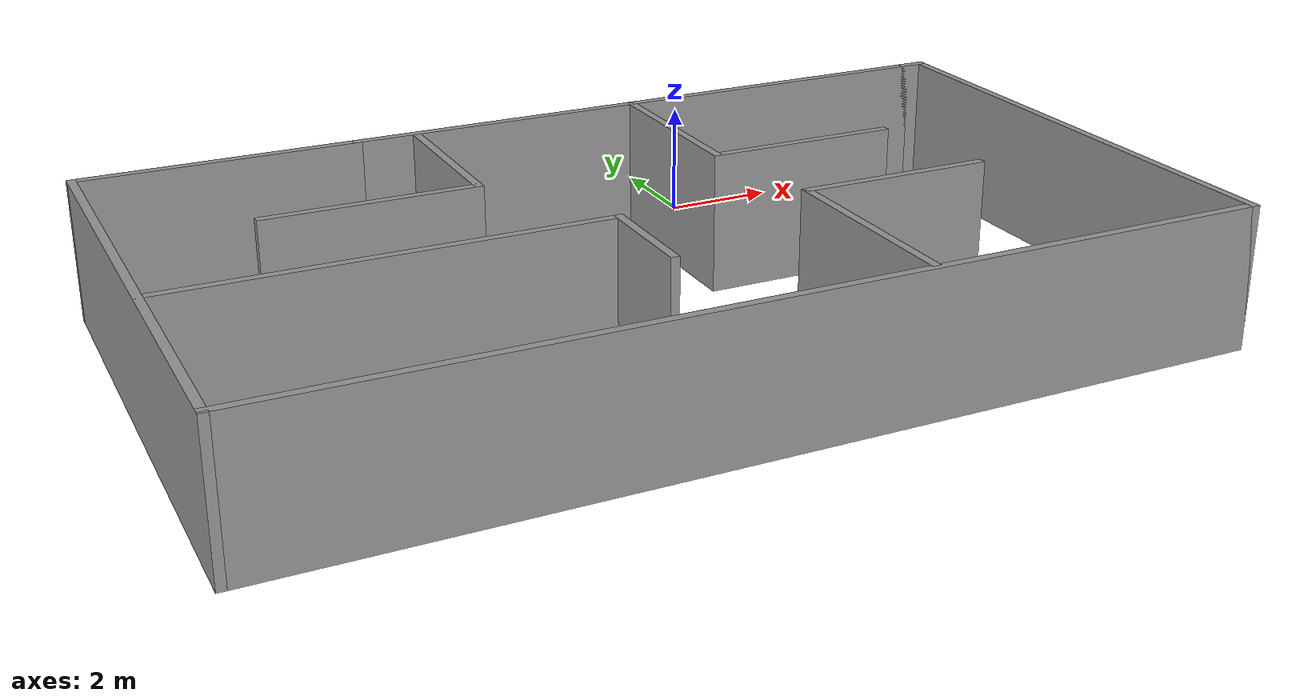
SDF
<?xml version='1.0'?>
<sdf version='1.7'>
  <model name='room'>
    <pose>-3.1215 -5.0575 0 0 -0 0</pose>
    <link name='Wall_0'>
      <collision name='Wall_0_Collision'>
        <geometry>
          <box>
            <size>11.5 0.15 2.5</size>
          </box>
        </geometry>
        <pose>0 0 1.25 0 -0 0</pose>
      </collision>
      <visual name='Wall_0_Visual'>
        <pose>0 0 1.25 0 -0 0</pose>
        <geometry>
          <box>
            <size>11.5 0.15 2.5</size>
          </box>
        </geometry>
        <material>
          <script>
            <uri>file://media/materials/scripts/gazebo.material</uri>
            <name>Gazebo/Grey</name>
          </script>
          <ambient>1 1 1 1</ambient>
        </material>
        <meta>
          <layer>0</layer>
        </meta>
      </visual>
      <pose>2.225 4.3675 0 0 -0 0</pose>
    </link>
    <link name='Wall_10'>
      <collision name='Wall_10_Collision'>
        <geometry>
          <box>
            <size>3.75 0.15 2.5</size>
          </box>
        </geometry>
        <pose>0 0 1.25 0 -0 0</pose>
      </collision>
      <visual name='Wall_10_Visual'>
        <pose>0 0 1.25 0 -0 0</pose>
        <geometry>
          <box>
            <size>3.75 0.15 2.5</size>
          </box>
        </geometry>
        <material>
          <script>
            <uri>file://media/materials/scripts/gazebo.material</uri>
            <name>Gazebo/Grey</name>
          </script>
          <ambient>1 1 1 1</ambient>
        </material>
        <meta>
          <layer>0</layer>
        </meta>
      </visual>
      <pose>-4.17239 1.26477 0 0 -0 3.14159</pose>
    </link>
    <link name='Wall_12'>
      <collision name='Wall_12_Collision'>
        <geometry>
          <box>
            <size>7.5 0.15 2.5</size>
          </box>
        </geometry>
        <pose>0 0 1.25 0 -0 0</pose>
      </collision>
      <visual name='Wall_12_Visual'>
        <pose>0 0 1.25 0 -0 0</pose>
        <geometry>
          <box>
            <size>7.5 0.15 2.5</size>
          </box>
        </geometry>
        <material>
          <script>
            <uri>file://media/materials/scripts/gazebo.material</uri>
            <name>Gazebo/Grey</name>
          </script>
          <ambient>1 1 1 1</ambient>
        </material>
        <meta>
          <layer>0</layer>
        </meta>
      </visual>
      <pose>-4.59067 -1.06589 0 0 -0 0</pose>
    </link>
    <link name='Wall_13'>
      <collision name='Wall_13_Collision'>
        <geometry>
          <box>
            <size>2 0.15 2.5</size>
          </box>
        </geometry>
        <pose>0 0 1.25 0 -0 0</pose>
      </collision>
      <visual name='Wall_13_Visual'>
        <pose>0 0 1.25 0 -0 0</pose>
        <geometry>
          <box>
            <size>2 0.15 2.5</size>
          </box>
        </geometry>
        <material>
          <script>
            <uri>file://media/materials/scripts/gazebo.material</uri>
            <name>Gazebo/Grey</name>
          </script>
          <ambient>1 1 1 1</ambient>
        </material>
        <meta>
          <layer>0</layer>
        </meta>
      </visual>
      <pose>-0.915668 -1.99089 0 0 -0 -1.5708</pose>
    </link>
    <link name='Wall_15'>
      <collision name='Wall_15_Collision'>
        <geometry>
          <box>
            <size>3.5 0.15 2.5</size>
          </box>
        </geometry>
        <pose>0 0 1.25 0 -0 0</pose>
      </collision>
      <visual name='Wall_15_Visual'>
        <pose>0 0 1.25 0 -0 0</pose>
        <geometry>
          <box>
            <size>3.5 0.15 2.5</size>
          </box>
        </geometry>
        <material>
          <script>
            <uri>file://media/materials/scripts/gazebo.material</uri>
            <name>Gazebo/Grey</name>
          </script>
          <ambient>1 1 1 1</ambient>
        </material>
        <meta>
          <layer>0</layer>
        </meta>
      </visual>
      <pose>1.87157 2.64955 0 0 -0 -1.5708</pose>
    </link>
    <link name='Wall_16'>
      <collision name='Wall_16_Collision'>
        <geometry>
          <box>
            <size>3.5 0.15 2.5</size>
          </box>
        </geometry>
        <pose>0 0 1.25 0 -0 0</pose>
      </collision>
      <visual name='Wall_16_Visual'>
        <pose>0 0 1.25 0 -0 0</pose>
        <geometry>
          <box>
            <size>3.5 0.15 2.5</size>
          </box>
        </geometry>
        <material>
          <script>
            <uri>file://media/materials/scripts/gazebo.material</uri>
            <name>Gazebo/Grey</name>
          </script>
          <ambient>1 1 1 1</ambient>
        </material>
        <meta>
          <layer>0</layer>
        </meta>
      </visual>
      <pose>3.54657 0.974548 0 0 -0 0</pose>
    </link>
    <link name='Wall_18'>
      <collision name='Wall_18_Collision'>
        <geometry>
          <box>
            <size>3.75 0.15 2.5</size>
          </box>
        </geometry>
        <pose>0 0 1.25 0 -0 0</pose>
      </collision>
      <visual name='Wall_18_Visual'>
        <pose>0 0 1.25 0 -0 0</pose>
        <geometry>
          <box>
            <size>3.75 0.15 2.5</size>
          </box>
        </geometry>
        <material>
          <script>
            <uri>file://media/materials/scripts/gazebo.material</uri>
            <name>Gazebo/Grey</name>
          </script>
          <ambient>1 1 1 1</ambient>
        </material>
        <meta>
          <layer>0</layer>
        </meta>
      </visual>
      <pose>2.33419 -3.08747 0 0 -0 1.5708</pose>
    </link>
    <link name='Wall_19'>
      <collision name='Wall_19_Collision'>
        <geometry>
          <box>
            <size>3.5 0.15 2.5</size>
          </box>
        </geometry>
        <pose>0 0 1.25 0 -0 0</pose>
      </collision>
      <visual name='Wall_19_Visual'>
        <pose>0 0 1.25 0 -0 0</pose>
        <geometry>
          <box>
            <size>3.5 0.15 2.5</size>
          </box>
        </geometry>
        <material>
          <script>
            <uri>file://media/materials/scripts/gazebo.material</uri>
            <name>Gazebo/Grey</name>
          </script>
          <ambient>1 1 1 1</ambient>
        </material>
        <meta>
          <layer>0</layer>
        </meta>
      </visual>
      <pose>4.00919 -1.28747 0 0 -0 0</pose>
    </link>
    <link name='Wall_2'>
      <collision name='Wall_2_Collision'>
        <geometry>
          <box>
            <size>5 0.15 2.5</size>
          </box>
        </geometry>
        <pose>0 0 1.25 0 -0 0</pose>
      </collision>
      <visual name='Wall_2_Visual'>
        <pose>0 0 1.25 0 -0 0</pose>
        <geometry>
          <box>
            <size>5 0.15 2.5</size>
          </box>
        </geometry>
        <material>
          <script>
            <uri>file://media/materials/scripts/gazebo.material</uri>
            <name>Gazebo/Grey</name>
          </script>
          <ambient>1 1 1 1</ambient>
        </material>
        <meta>
          <layer>0</layer>
        </meta>
      </visual>
      <pose>-5.875 4.3675 0 0 -0 3.14159</pose>
    </link>
    <link name='Wall_4'>
      <collision name='Wall_4_Collision'>
        <geometry>
          <box>
            <size>9.5 0.15 2.5</size>
          </box>
        </geometry>
        <pose>0 0 1.25 0 -0 0</pose>
      </collision>
      <visual name='Wall_4_Visual'>
        <pose>0 0 1.25 0 -0 0</pose>
        <geometry>
          <box>
            <size>9.5 0.15 2.5</size>
          </box>
        </geometry>
        <material>
          <script>
            <uri>file://media/materials/scripts/gazebo.material</uri>
            <name>Gazebo/Grey</name>
          </script>
          <ambient>1 1 1 1</ambient>
        </material>
        <meta>
          <layer>0</layer>
        </meta>
      </visual>
      <pose>-8.3 -0.3075 0 0 -0 -1.5708</pose>
    </link>
    <link name='Wall_5'>
      <collision name='Wall_5_Collision'>
        <geometry>
          <box>
            <size>16.75 0.15 2.5</size>
          </box>
        </geometry>
        <pose>0 0 1.25 0 -0 0</pose>
      </collision>
      <visual name='Wall_5_Visual'>
        <pose>0 0 1.25 0 -0 0</pose>
        <geometry>
          <box>
            <size>16.75 0.15 2.5</size>
          </box>
        </geometry>
        <material>
          <script>
            <uri>file://media/materials/scripts/gazebo.material</uri>
            <name>Gazebo/Grey</name>
          </script>
          <ambient>1 1 1 1</ambient>
        </material>
        <meta>
          <layer>0</layer>
        </meta>
      </visual>
      <pose>0 -4.9825 0 0 -0 0</pose>
    </link>
    <link name='Wall_6'>
      <collision name='Wall_6_Collision'>
        <geometry>
          <box>
            <size>9.5 0.15 2.5</size>
          </box>
        </geometry>
        <pose>0 0 1.25 0 -0 0</pose>
      </collision>
      <visual name='Wall_6_Visual'>
        <pose>0 0 1.25 0 -0 0</pose>
        <geometry>
          <box>
            <size>9.5 0.15 2.5</size>
          </box>
        </geometry>
        <material>
          <script>
            <uri>file://media/materials/scripts/gazebo.material</uri>
            <name>Gazebo/Grey</name>
          </script>
          <ambient>1 1 1 1</ambient>
        </material>
        <meta>
          <layer>0</layer>
        </meta>
      </visual>
      <pose>8.3 -0.3075 0 0 -0 1.5708</pose>
    </link>
    <link name='Wall_7'>
      <collision name='Wall_7_Collision'>
        <geometry>
          <box>
            <size>0.55 0.15 2.5</size>
          </box>
        </geometry>
        <pose>0 0 1.25 0 -0 0</pose>
      </collision>
      <visual name='Wall_7_Visual'>
        <pose>0 0 1.25 0 -0 0</pose>
        <geometry>
          <box>
            <size>0.55 0.15 2.5</size>
          </box>
        </geometry>
        <material>
          <script>
            <uri>file://media/materials/scripts/gazebo.material</uri>
            <name>Gazebo/Grey</name>
          </script>
          <ambient>1 1 1 1</ambient>
        </material>
        <meta>
          <layer>0</layer>
        </meta>
      </visual>
      <pose>8.1 4.3675 0 0 -0 3.14159</pose>
    </link>
    <link name='Wall_9'>
      <collision name='Wall_9_Collision'>
        <geometry>
          <box>
            <size>3.25 0.15 2.5</size>
          </box>
        </geometry>
        <pose>0 0 1.25 0 -0 0</pose>
      </collision>
      <visual name='Wall_9_Visual'>
        <pose>0 0 1.25 0 -0 0</pose>
        <geometry>
          <box>
            <size>3.25 0.15 2.5</size>
          </box>
        </geometry>
        <material>
          <script>
            <uri>file://media/materials/scripts/gazebo.material</uri>
            <name>Gazebo/Grey</name>
          </script>
          <ambient>1 1 1 1</ambient>
        </material>
        <meta>
          <layer>0</layer>
        </meta>
      </visual>
      <pose>-2.37239 2.81478 0 0 -0 -1.5708</pose>
    </link>
    <static>1</static>
  </model>
</sdf>
